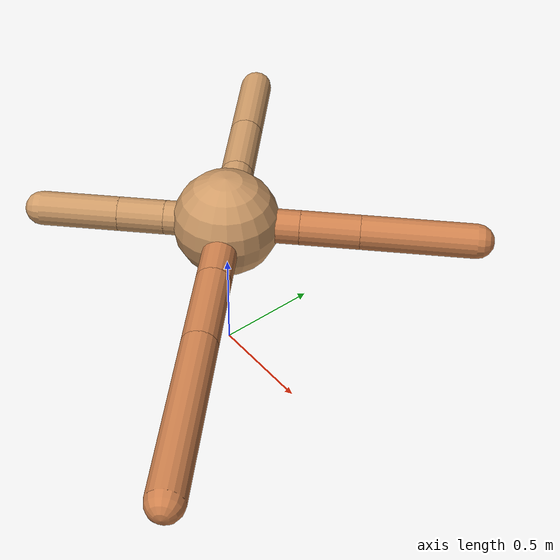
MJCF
<mujoco model="ant">
  <compiler angle="degree" coordinate="local" inertiafromgeom="true" />
  <option integrator="RK4" timestep="0.01" />
  <custom>
    <numeric data="0.0 0.0 0.55 1.0 0.0 0.0 0.0 0.0 1.0 0.0 -1.0 0.0 -1.0 0.0 1.0" name="init_qpos" />
  </custom>
  <default>
    <joint armature="1" damping="1" limited="true" />
    <geom conaffinity="0" condim="3" density="5.0" friction="1.5 0.1 0.1" margin="0.01" rgba="0.8 0.6 0.4 1" />
  </default>
  <worldbody>
    <body name="torso" pos="0 0 0.75">
      <geom name="torso_geom" pos="0 0 0" size="0.25" type="sphere" />

      <body name="front_left_leg" pos="0 0 0">
        <geom fromto="0.0 0.0 0.0 0.24099275217985694 0.24099275217985694 0.0" name="aux_1_geom" size="0.08" type="capsule" rgba=".8 .5 .3 1" />
        <body name="aux_1" pos="0.24099275217985694 0.24099275217985694 0.0">
          <joint axis="0 0 1" name="hip_1" pos="0.0 0.0 0.0" range="-40 40" type="hinge" />
          <geom fromto="0.0 0.0 0.0 0.19602787770345687 0.19602787770345687 0.0" name="left_leg_geom" size="0.08" type="capsule" rgba=".8 .5 .3 1" />
          <body pos="0.19602787770345687 0.19602787770345687 0.0" name="front_left_foot">
            <joint axis="-1 1 0" name="ankle_1" pos="0.0 0.0 0.0" range="30 100" type="hinge" />
            <geom fromto="0.0 0.0 0.0 0.3736318129122074 0.3736318129122074 0.0" name="left_ankle_geom" size="0.08" type="capsule" rgba=".8 .5 .3 1" />
          </body>
        </body>
      </body>
      <body name="front_right_leg" pos="0 0 0">
        <geom fromto="0.0 0.0 0.0 -0.26029188055440233 0.26029188055440233 0.0" name="aux_2_geom" size="0.08" type="capsule" />
        <body name="aux_2" pos="-0.26029188055440233 0.26029188055440233 0.0">
          <joint axis="0 0 1" name="hip_2" pos="0.0 0.0 0.0" range="-40 40" type="hinge" />
          <geom fromto="0.0 0.0 0.0 -0.24530025963578886 0.24530025963578886 0.0" name="right_leg_geom" size="0.08" type="capsule" />
          <body pos="-0.24530025963578886 0.24530025963578886 0.0" name="front_right_foot">
            <joint axis="1 1 0" name="ankle_2" pos="0.0 0.0 0.0" range="-100 -30" type="hinge" />
            <geom fromto="0.0 0.0 0.0 -0.30551660864636576 0.30551660864636576 0.0" name="right_ankle_geom" size="0.08" type="capsule" />
          </body>
        </body>
      </body>
      <body name="left_back_leg" pos="0 0 0">
        <geom fromto="0.0 0.0 0.0 -0.20279040002726642 -0.20279040002726642 0.0" name="aux_3_geom" size="0.08" type="capsule" />
        <body name="aux_3" pos="-0.20279040002726642 -0.20279040002726642 0.0">
          <joint axis="0 0 1" name="hip_3" pos="0.0 0.0 0.0" range="-40 40" type="hinge" />
          <geom fromto="0.0 0.0 0.0 -0.1532472701944145 -0.1532472701944145 0.0" name="back_leg_geom" size="0.08" type="capsule" />
          <body pos="-0.1532472701944145 -0.1532472701944145 0.0" name="left_back_foot">
            <joint axis="-1 1 0" name="ankle_3" pos="0.0 0.0 0.0" range="-100 -30" type="hinge" />
            <geom fromto="0.0 0.0 0.0 -0.25952530705603866 -0.25952530705603866 0.0" name="third_ankle_geom" size="0.08" type="capsule" />
          </body>
        </body>
      </body>
      <body name="right_back_leg" pos="0 0 0">
        <geom fromto="0.0 0.0 0.0 0.2848536577040559 -0.2848536577040559 0.0" name="aux_4_geom" size="0.08" type="capsule" rgba=".8 .5 .3 1" />
        <body name="aux_4" pos="0.2848536577040559 -0.2848536577040559 0.0">
          <joint axis="0 0 1" name="hip_4" pos="0.0 0.0 0.0" range="-40 40" type="hinge" />
          <geom fromto="0.0 0.0 0.0 0.2719206494519656 -0.2719206494519656 0.0" name="rightback_leg_geom" size="0.08" type="capsule" rgba=".8 .5 .3 1" />
          <body pos="0.2719206494519656 -0.2719206494519656 0.0" name="right_back_foot">
            <joint axis="1 1 0" name="ankle_4" pos="0.0 0.0 0.0" range="30 100" type="hinge" />
            <geom fromto="0.0 0.0 0.0 0.5555567697615387 -0.5555567697615387 0.0" name="fourth_ankle_geom" size="0.08" type="capsule" rgba=".8 .5 .3 1" />
          </body>
        </body>
      </body>
    </body>
  </worldbody>
  <actuator>
    <motor ctrllimited="true" ctrlrange="-1.0 1.0" joint="hip_4" gear="150" />
    <motor ctrllimited="true" ctrlrange="-1.0 1.0" joint="ankle_4" gear="150" />
    <motor ctrllimited="true" ctrlrange="-1.0 1.0" joint="hip_1" gear="150" />
    <motor ctrllimited="true" ctrlrange="-1.0 1.0" joint="ankle_1" gear="150" />
    <motor ctrllimited="true" ctrlrange="-1.0 1.0" joint="hip_2" gear="150" />
    <motor ctrllimited="true" ctrlrange="-1.0 1.0" joint="ankle_2" gear="150" />
    <motor ctrllimited="true" ctrlrange="-1.0 1.0" joint="hip_3" gear="150" />
    <motor ctrllimited="true" ctrlrange="-1.0 1.0" joint="ankle_3" gear="150" />
  </actuator>
</mujoco>
